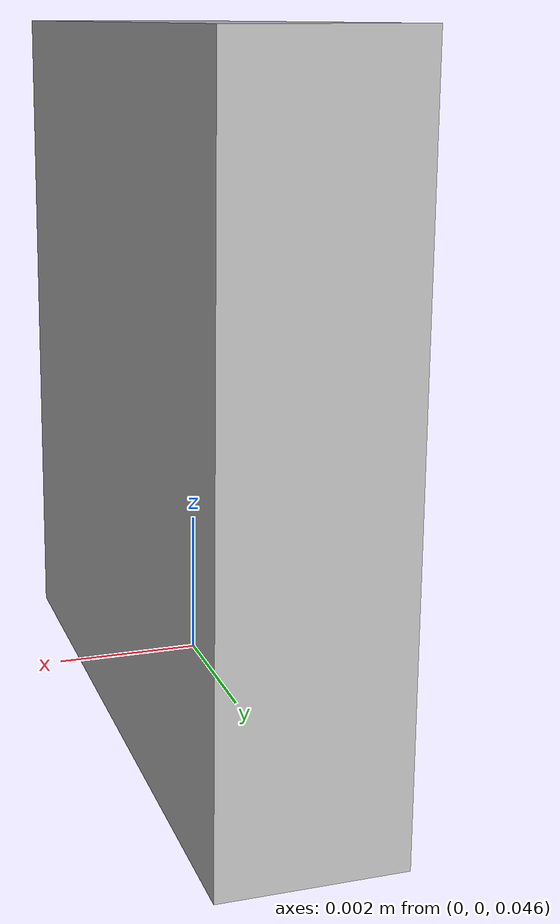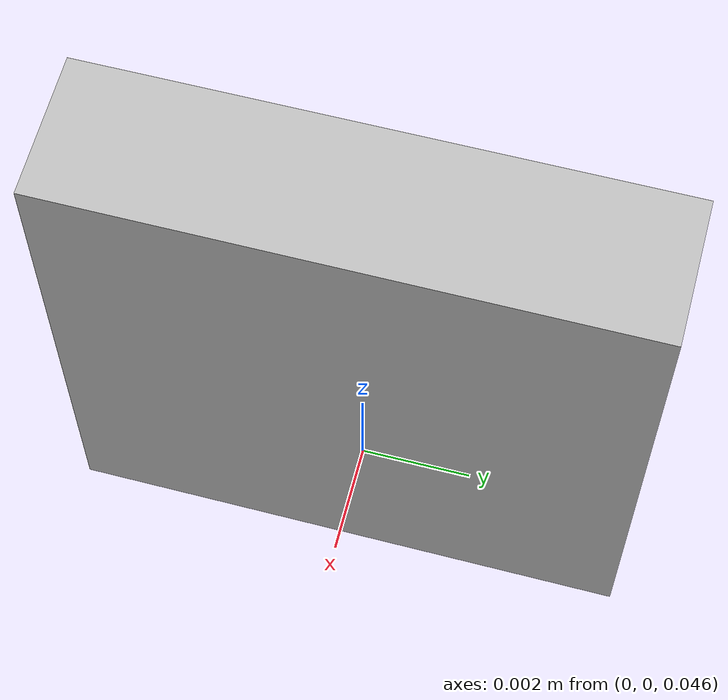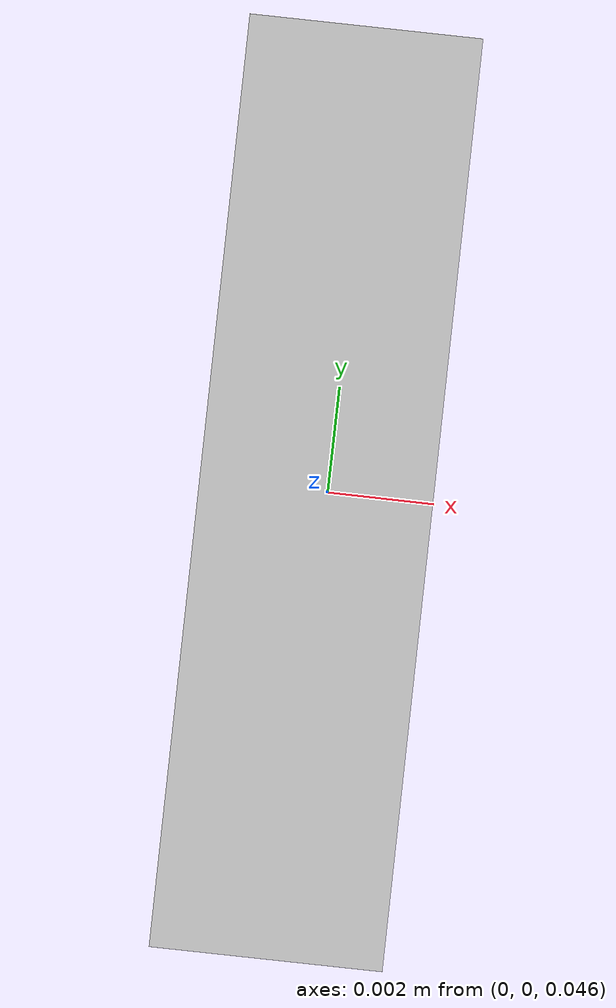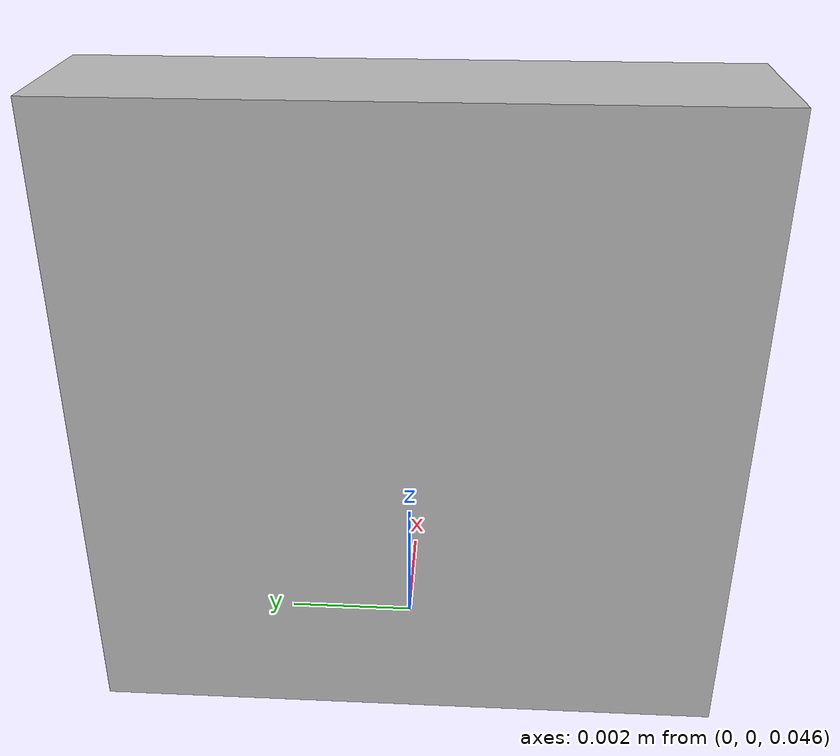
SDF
<?xml version="1.0" ?>
<sdf version="1.6">
  <model name="oak_d_RGB">
    <pose>0 0 0.05 0 0 0</pose>
    <link name="link">
      <inertial>
        <mass>0.1</mass>
        <inertia>
          <ixx>0.000166667</ixx>
          <iyy>0.000166667</iyy>
          <izz>0.000166667</izz>
        </inertia>
      </inertial>
      <collision name="collision">
        <geometry>
          <box>
            <size>0.0025 0.01 0.01</size>
          </box>
        </geometry>
      </collision>
      <visual name="visual">
        <geometry>
          <box>
            <size>0.0025 0.01 0.01</size>
          </box>
        </geometry>
      </visual>
      <sensor name="oak_d_RGB" type="camera">
        <update_rate>25</update_rate>
        <camera>
          <horizontal_fov>1.166746</horizontal_fov>
          <image>
            <width>256</width>
            <height>192</height>
            <format>R8G8B8</format>
          </image>
          <clip>
            <near>0.01</near>
            <far>300</far>
          </clip>
          <noise>
            <type>gaussian</type>
            <mean>0.0</mean>
            <stddev>0.03</stddev>
          </noise>
        </camera>
        <always_on>1</always_on>
        <visualize>false</visualize>
        <plugin name='camera_plugin' filename='libgazebo_ros_camera.so'>
          <robotNamespace>/</robotNamespace>
          <alwaysOn>true</alwaysOn>
          <imageTopicName>image_raw</imageTopicName>
          <cameraInfoTopicName>camera_info</cameraInfoTopicName>
          <updateRate>25.0</updateRate>
          <cameraName>oak_d_RGB</cameraName>
          <frameName>oak_d_RGB_link</frameName>
          <focalLength>193.9393</focalLength>
        </plugin>
      </sensor>
    </link>
  </model>
</sdf>
